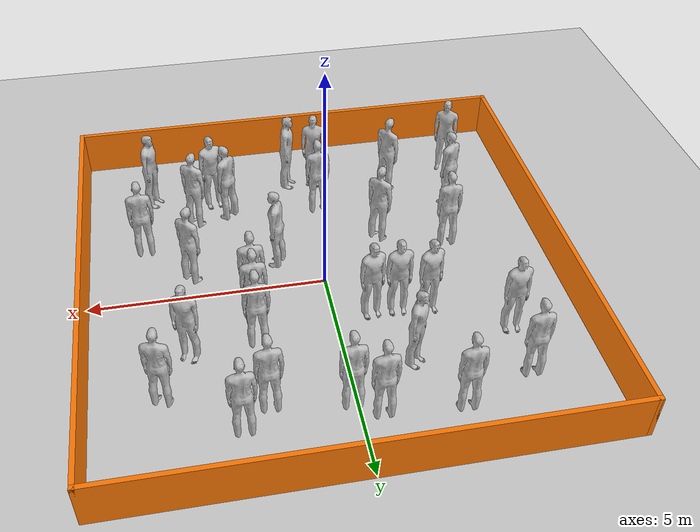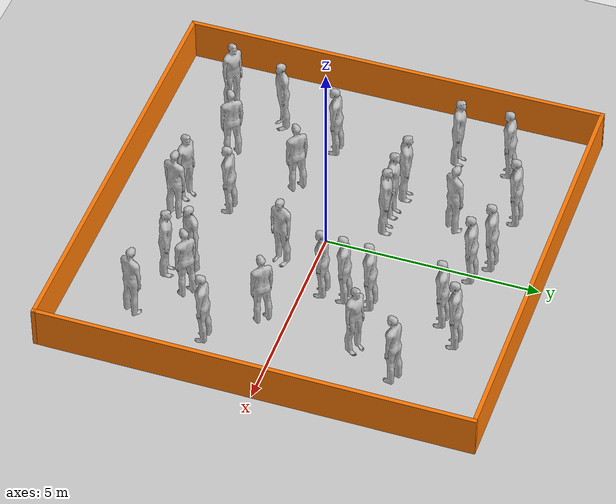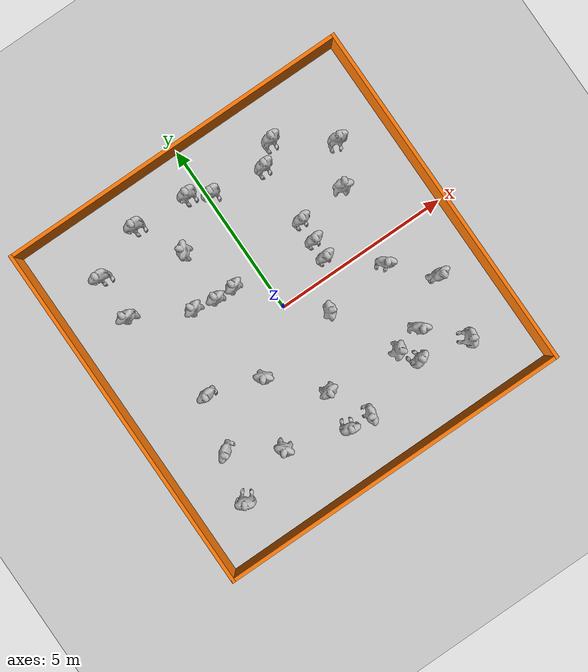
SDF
<sdf version="1.6">
 <world name="default">
  <light name="sun" type="directional">
   <cast_shadows>0</cast_shadows>
   <pose>0 0 10 0 -0 0</pose>
   <diffuse>0.8 0.8 0.8 1</diffuse>
   <specular>0.2 0.2 0.2 1</specular>
   <attenuation>
    <range>1000</range>
    <constant>0.9</constant>
    <linear>0.01</linear>
    <quadratic>0.001</quadratic>
   </attenuation>
   <direction>-0.5 0.1 -0.9</direction>
  </light>
  <model name="ground_plane">
   <static>1</static>
   <link name="link">
    <collision name="collision">
     <geometry><plane><normal>0 0 1</normal><size>100 100</size></plane></geometry>
     <surface><friction><ode><mu>100</mu><mu2>50</mu2></ode></friction></surface>
    </collision>
    <visual name="visual">
     <cast_shadows>0</cast_shadows>
     <geometry><plane><normal>0 0 1</normal><size>100 100</size></plane></geometry>
     <material>
      <script><uri>file://media/materials/scripts/gazebo.material</uri><name>Gazebo/Grey</name></script>
     </material>
    </visual>
   </link>
  </model>
  <gravity>0 0 -9.8</gravity>
  <magnetic_field>6e-06 2.3e-05 -4.2e-05</magnetic_field>
  <atmosphere type="adiabatic"/>
  <physics name="default_physics" default="0" type="ode">
   <max_step_size>0.001</max_step_size>
   <real_time_factor>1</real_time_factor>
   <real_time_update_rate>1000</real_time_update_rate>
  </physics>
  <scene><ambient>0.4 0.4 0.4 1</ambient><background>0.7 0.7 0.7 1</background><shadows>1</shadows></scene>
  <audio><device>default</device></audio>
  <spherical_coordinates>
   <surface_model>EARTH_WGS84</surface_model>
   <latitude_deg>0</latitude_deg>
   <longitude_deg>0</longitude_deg>
   <elevation>0</elevation>
   <heading_deg>0</heading_deg>
  </spherical_coordinates>
  <model name="world3">
   <link name="Wall_0">
    <collision name="Wall_0_Collision">
     <geometry><box><size>10.1 0.1 1</size></box></geometry>
     <pose>0 0 0.5 0 -0 0</pose>
    </collision>
    <visual name="Wall_0_Visual">
     <pose>0 0 0.5 0 -0 0</pose>
     <geometry><box><size>10.1 0.1 1</size></box></geometry>
     <material>
      <script><uri>file://media/materials/scripts/gazebo.material</uri><name>Gazebo/Grey</name></script>
      <ambient>0.996078 0.47451 0.0196078 1</ambient>
     </material>
     <meta><layer>0</layer></meta>
    </visual>
    <pose>0 5 0 0 -0 0</pose>
   </link>
   <link name="Wall_1">
    <collision name="Wall_1_Collision">
     <geometry><box><size>10.1 0.1 1</size></box></geometry>
     <pose>0 0 0.5 0 -0 0</pose>
    </collision>
    <visual name="Wall_1_Visual">
     <pose>0 0 0.5 0 -0 0</pose>
     <geometry><box><size>10.1 0.1 1</size></box></geometry>
     <material>
      <script><uri>file://media/materials/scripts/gazebo.material</uri><name>Gazebo/Grey</name></script>
      <ambient>0.996078 0.47451 0.0196078 1</ambient>
     </material>
     <meta><layer>0</layer></meta>
    </visual>
    <pose>5 0 0 0 -0 -1.5708</pose>
   </link>
   <link name="Wall_2">
    <collision name="Wall_2_Collision">
     <geometry><box><size>10.1 0.1 1</size></box></geometry>
     <pose>0 0 0.5 0 -0 0</pose>
    </collision>
    <visual name="Wall_2_Visual">
     <pose>0 0 0.5 0 -0 0</pose>
     <geometry><box><size>10.1 0.1 1</size></box></geometry>
     <material>
      <script><uri>file://media/materials/scripts/gazebo.material</uri><name>Gazebo/Grey</name></script>
      <ambient>0.996078 0.47451 0.0196078 1</ambient>
     </material>
     <meta><layer>0</layer></meta>
    </visual>
    <pose>0 -5 0 0 -0 3.14159</pose>
   </link>
   <link name="Wall_3">
    <collision name="Wall_3_Collision">
     <geometry><box><size>10.1 0.1 1</size></box></geometry>
     <pose>0 0 0.5 0 -0 0</pose>
    </collision>
    <visual name="Wall_3_Visual">
     <pose>0 0 0.5 0 -0 0</pose>
     <geometry><box><size>10.1 0.1 1</size></box></geometry>
     <material>
      <script><uri>file://media/materials/scripts/gazebo.material</uri><name>Gazebo/Grey</name></script>
      <ambient>0.996078 0.47451 0.0196078 1</ambient>
     </material>
     <meta><layer>0</layer></meta>
    </visual>
    <pose>-5 0 0 0 -0 1.5708</pose>
   </link>
   <static>1</static>
  </model>
  <model name="person_standing_0">
   <link name="link">
    <inertial>
     <pose>0 -0.1 0.95 0 -0 0</pose>
     <mass>80</mass>
     <inertia><ixx>24.88</ixx><ixy>0</ixy><ixz>0</ixz><iyy>25.73</iyy><iyz>0</iyz><izz>2.48</izz></inertia>
    </inertial>
    <collision name="bottom">
     <pose>0 -0.1 0.01 0 -0 0</pose>
     <geometry><box><size>0.5 0.35 0.02</size></box></geometry>
    </collision>
    <collision name="person">
     <pose>0 0 0.02 0.04 -0 0</pose>
     <geometry><mesh><uri>model://person_standing/meshes/standing.dae</uri></mesh></geometry>
    </collision>
    <visual name="visual">
     <pose>0 0 0.02 0.04 -0 0</pose>
     <geometry><mesh><uri>model://person_standing/meshes/standing.dae</uri></mesh></geometry>
    </visual>
   </link>
   <pose>0.835283 -0.712425 0 -1e-06 1e-06 1.11201</pose>
  </model>
  <model name="person_standing_1">
   <link name="link">
    <inertial>
     <pose>0 -0.1 0.95 0 -0 0</pose>
     <mass>80</mass>
     <inertia><ixx>24.88</ixx><ixy>0</ixy><ixz>0</ixz><iyy>25.73</iyy><iyz>0</iyz><izz>2.48</izz></inertia>
    </inertial>
    <collision name="bottom">
     <pose>0 -0.1 0.01 0 -0 0</pose>
     <geometry><box><size>0.5 0.35 0.02</size></box></geometry>
    </collision>
    <collision name="person">
     <pose>0 0 0.02 0.04 -0 0</pose>
     <geometry><mesh><uri>model://person_standing/meshes/standing.dae</uri></mesh></geometry>
    </collision>
    <visual name="visual">
     <pose>0 0 0.02 0.04 -0 0</pose>
     <geometry><mesh><uri>model://person_standing/meshes/standing.dae</uri></mesh></geometry>
    </visual>
   </link>
   <pose>-0.274695 -2.32325 -1e-06 -1e-06 -1e-06 -0.000905</pose>
  </model>
  <model name="person_standing_2">
   <link name="link">
    <inertial>
     <pose>0 -0.1 0.95 0 -0 0</pose>
     <mass>80</mass>
     <inertia><ixx>24.88</ixx><ixy>0</ixy><ixz>0</ixz><iyy>25.73</iyy><iyz>0</iyz><izz>2.48</izz></inertia>
    </inertial>
    <collision name="bottom">
     <pose>0 -0.1 0.01 0 -0 0</pose>
     <geometry><box><size>0.5 0.35 0.02</size></box></geometry>
    </collision>
    <collision name="person">
     <pose>0 0 0.02 0.04 -0 0</pose>
     <geometry><mesh><uri>model://person_standing/meshes/standing.dae</uri></mesh></geometry>
    </collision>
    <visual name="visual">
     <pose>0 0 0.02 0.04 -0 0</pose>
     <geometry><mesh><uri>model://person_standing/meshes/standing.dae</uri></mesh></geometry>
    </visual>
   </link>
   <pose>-1.96221 -2.92206 -1e-06 -1e-06 -1e-06 -0.92659</pose>
  </model>
  <model name="person_standing_3">
   <link name="link">
    <inertial>
     <pose>0 -0.1 0.95 0 -0 0</pose>
     <mass>80</mass>
     <inertia><ixx>24.88</ixx><ixy>0</ixy><ixz>0</ixz><iyy>25.73</iyy><iyz>0</iyz><izz>2.48</izz></inertia>
    </inertial>
    <collision name="bottom">
     <pose>0 -0.1 0.01 0 -0 0</pose>
     <geometry><box><size>0.5 0.35 0.02</size></box></geometry>
    </collision>
    <collision name="person">
     <pose>0 0 0.02 0.04 -0 0</pose>
     <geometry><mesh><uri>model://person_standing/meshes/standing.dae</uri></mesh></geometry>
    </collision>
    <visual name="visual">
     <pose>0 0 0.02 0.04 -0 0</pose>
     <geometry><mesh><uri>model://person_standing/meshes/standing.dae</uri></mesh></geometry>
    </visual>
   </link>
   <pose>-3.64275 -3.58488 -0 0 -1e-06 2.53021</pose>
  </model>
  <model name="person_standing_4">
   <link name="link">
    <inertial>
     <pose>0 -0.1 0.95 0 -0 0</pose>
     <mass>80</mass>
     <inertia><ixx>24.88</ixx><ixy>0</ixy><ixz>0</ixz><iyy>25.73</iyy><iyz>0</iyz><izz>2.48</izz></inertia>
    </inertial>
    <collision name="bottom">
     <pose>0 -0.1 0.01 0 -0 0</pose>
     <geometry><box><size>0.5 0.35 0.02</size></box></geometry>
    </collision>
    <collision name="person">
     <pose>0 0 0.02 0.04 -0 0</pose>
     <geometry><mesh><uri>model://person_standing/meshes/standing.dae</uri></mesh></geometry>
    </collision>
    <visual name="visual">
     <pose>0 0 0.02 0.04 -0 0</pose>
     <geometry><mesh><uri>model://person_standing/meshes/standing.dae</uri></mesh></geometry>
    </visual>
   </link>
   <pose>-3.34493 -2.11257 -0 -1e-06 -1e-06 0.559852</pose>
  </model>
  <model name="person_standing_5">
   <link name="link">
    <inertial>
     <pose>0 -0.1 0.95 0 -0 0</pose>
     <mass>80</mass>
     <inertia><ixx>24.88</ixx><ixy>0</ixy><ixz>0</ixz><iyy>25.73</iyy><iyz>0</iyz><izz>2.48</izz></inertia>
    </inertial>
    <collision name="bottom">
     <pose>0 -0.1 0.01 0 -0 0</pose>
     <geometry><box><size>0.5 0.35 0.02</size></box></geometry>
    </collision>
    <collision name="person">
     <pose>0 0 0.02 0.04 -0 0</pose>
     <geometry><mesh><uri>model://person_standing/meshes/standing.dae</uri></mesh></geometry>
    </collision>
    <visual name="visual">
     <pose>0 0 0.02 0.04 -0 0</pose>
     <geometry><mesh><uri>model://person_standing/meshes/standing.dae</uri></mesh></geometry>
    </visual>
   </link>
   <pose>-2.87358 -0.649181 0 -1e-06 1e-06 -0.002119</pose>
  </model>
  <model name="person_standing_6">
   <link name="link">
    <inertial>
     <pose>0 -0.1 0.95 0 -0 0</pose>
     <mass>80</mass>
     <inertia><ixx>24.88</ixx><ixy>0</ixy><ixz>0</ixz><iyy>25.73</iyy><iyz>0</iyz><izz>2.48</izz></inertia>
    </inertial>
    <collision name="bottom">
     <pose>0 -0.1 0.01 0 -0 0</pose>
     <geometry><box><size>0.5 0.35 0.02</size></box></geometry>
    </collision>
    <collision name="person">
     <pose>0 0 0.02 0.04 -0 0</pose>
     <geometry><mesh><uri>model://person_standing/meshes/standing.dae</uri></mesh></geometry>
    </collision>
    <visual name="visual">
     <pose>0 0 0.02 0.04 -0 0</pose>
     <geometry><mesh><uri>model://person_standing/meshes/standing.dae</uri></mesh></geometry>
    </visual>
   </link>
   <pose>-0.391308 -3.54975 -0 1e-06 1e-06 2.77669</pose>
  </model>
  <model name="person_standing_7">
   <link name="link">
    <inertial>
     <pose>0 -0.1 0.95 0 -0 0</pose>
     <mass>80</mass>
     <inertia><ixx>24.88</ixx><ixy>0</ixy><ixz>0</ixz><iyy>25.73</iyy><iyz>0</iyz><izz>2.48</izz></inertia>
    </inertial>
    <collision name="bottom">
     <pose>0 -0.1 0.01 0 -0 0</pose>
     <geometry><box><size>0.5 0.35 0.02</size></box></geometry>
    </collision>
    <collision name="person">
     <pose>0 0 0.02 0.04 -0 0</pose>
     <geometry><mesh><uri>model://person_standing/meshes/standing.dae</uri></mesh></geometry>
    </collision>
    <visual name="visual">
     <pose>0 0 0.02 0.04 -0 0</pose>
     <geometry><mesh><uri>model://person_standing/meshes/standing.dae</uri></mesh></geometry>
    </visual>
   </link>
   <pose>0.346695 -3.52629 0 0 -1e-06 -1.93154</pose>
  </model>
  <model name="person_standing_8">
   <link name="link">
    <inertial>
     <pose>0 -0.1 0.95 0 -0 0</pose>
     <mass>80</mass>
     <inertia><ixx>24.88</ixx><ixy>0</ixy><ixz>0</ixz><iyy>25.73</iyy><iyz>0</iyz><izz>2.48</izz></inertia>
    </inertial>
    <collision name="bottom">
     <pose>0 -0.1 0.01 0 -0 0</pose>
     <geometry><box><size>0.5 0.35 0.02</size></box></geometry>
    </collision>
    <collision name="person">
     <pose>0 0 0.02 0.04 -0 0</pose>
     <geometry><mesh><uri>model://person_standing/meshes/standing.dae</uri></mesh></geometry>
    </collision>
    <visual name="visual">
     <pose>0 0 0.02 0.04 -0 0</pose>
     <geometry><mesh><uri>model://person_standing/meshes/standing.dae</uri></mesh></geometry>
    </visual>
   </link>
   <pose>1.71755 -2.49945 0 0 -1e-06 0.729804</pose>
  </model>
  <model name="person_standing_9">
   <link name="link">
    <inertial>
     <pose>0 -0.1 0.95 0 -0 0</pose>
     <mass>80</mass>
     <inertia><ixx>24.88</ixx><ixy>0</ixy><ixz>0</ixz><iyy>25.73</iyy><iyz>0</iyz><izz>2.48</izz></inertia>
    </inertial>
    <collision name="bottom">
     <pose>0 -0.1 0.01 0 -0 0</pose>
     <geometry><box><size>0.5 0.35 0.02</size></box></geometry>
    </collision>
    <collision name="person">
     <pose>0 0 0.02 0.04 -0 0</pose>
     <geometry><mesh><uri>model://person_standing/meshes/standing.dae</uri></mesh></geometry>
    </collision>
    <visual name="visual">
     <pose>0 0 0.02 0.04 -0 0</pose>
     <geometry><mesh><uri>model://person_standing/meshes/standing.dae</uri></mesh></geometry>
    </visual>
   </link>
   <pose>2.0988 -3.1227 -0 -0 1e-06 -2.89478</pose>
  </model>
  <model name="person_standing_10">
   <link name="link">
    <inertial>
     <pose>0 -0.1 0.95 0 -0 0</pose>
     <mass>80</mass>
     <inertia><ixx>24.88</ixx><ixy>0</ixy><ixz>0</ixz><iyy>25.73</iyy><iyz>0</iyz><izz>2.48</izz></inertia>
    </inertial>
    <collision name="bottom">
     <pose>0 -0.1 0.01 0 -0 0</pose>
     <geometry><box><size>0.5 0.35 0.02</size></box></geometry>
    </collision>
    <collision name="person">
     <pose>0 0 0.02 0.04 -0 0</pose>
     <geometry><mesh><uri>model://person_standing/meshes/standing.dae</uri></mesh></geometry>
    </collision>
    <visual name="visual">
     <pose>0 0 0.02 0.04 -0 0</pose>
     <geometry><mesh><uri>model://person_standing/meshes/standing.dae</uri></mesh></geometry>
    </visual>
   </link>
   <pose>2.58092 -2.3386 0 0 1e-06 -0.663556</pose>
  </model>
  <model name="person_standing_11">
   <link name="link">
    <inertial>
     <pose>0 -0.1 0.95 0 -0 0</pose>
     <mass>80</mass>
     <inertia><ixx>24.88</ixx><ixy>0</ixy><ixz>0</ixz><iyy>25.73</iyy><iyz>0</iyz><izz>2.48</izz></inertia>
    </inertial>
    <collision name="bottom">
     <pose>0 -0.1 0.01 0 -0 0</pose>
     <geometry><box><size>0.5 0.35 0.02</size></box></geometry>
    </collision>
    <collision name="person">
     <pose>0 0 0.02 0.04 -0 0</pose>
     <geometry><mesh><uri>model://person_standing/meshes/standing.dae</uri></mesh></geometry>
    </collision>
    <visual name="visual">
     <pose>0 0 0.02 0.04 -0 0</pose>
     <geometry><mesh><uri>model://person_standing/meshes/standing.dae</uri></mesh></geometry>
    </visual>
   </link>
   <pose>3.51625 -3.36978 -0 -0 1e-06 -2.0803</pose>
  </model>
  <model name="person_standing_12">
   <link name="link">
    <inertial>
     <pose>0 -0.1 0.95 0 -0 0</pose>
     <mass>80</mass>
     <inertia><ixx>24.88</ixx><ixy>0</ixy><ixz>0</ixz><iyy>25.73</iyy><iyz>0</iyz><izz>2.48</izz></inertia>
    </inertial>
    <collision name="bottom">
     <pose>0 -0.1 0.01 0 -0 0</pose>
     <geometry><box><size>0.5 0.35 0.02</size></box></geometry>
    </collision>
    <collision name="person">
     <pose>0 0 0.02 0.04 -0 0</pose>
     <geometry><mesh><uri>model://person_standing/meshes/standing.dae</uri></mesh></geometry>
    </collision>
    <visual name="visual">
     <pose>0 0 0.02 0.04 -0 0</pose>
     <geometry><mesh><uri>model://person_standing/meshes/standing.dae</uri></mesh></geometry>
    </visual>
   </link>
   <pose>3.70742 -1.48758 -0 1e-06 -1e-06 -2.2e-05</pose>
  </model>
  <model name="person_standing_13">
   <link name="link">
    <inertial>
     <pose>0 -0.1 0.95 0 -0 0</pose>
     <mass>80</mass>
     <inertia><ixx>24.88</ixx><ixy>0</ixy><ixz>0</ixz><iyy>25.73</iyy><iyz>0</iyz><izz>2.48</izz></inertia>
    </inertial>
    <collision name="bottom">
     <pose>0 -0.1 0.01 0 -0 0</pose>
     <geometry><box><size>0.5 0.35 0.02</size></box></geometry>
    </collision>
    <collision name="person">
     <pose>0 0 0.02 0.04 -0 0</pose>
     <geometry><mesh><uri>model://person_standing/meshes/standing.dae</uri></mesh></geometry>
    </collision>
    <visual name="visual">
     <pose>0 0 0.02 0.04 -0 0</pose>
     <geometry><mesh><uri>model://person_standing/meshes/standing.dae</uri></mesh></geometry>
    </visual>
   </link>
   <pose>2.82342 -0.486954 0 -0 1e-06 -0.801401</pose>
  </model>
  <model name="person_standing_14">
   <link name="link">
    <inertial>
     <pose>0 -0.1 0.95 0 -0 0</pose>
     <mass>80</mass>
     <inertia><ixx>24.88</ixx><ixy>0</ixy><ixz>0</ixz><iyy>25.73</iyy><iyz>0</iyz><izz>2.48</izz></inertia>
    </inertial>
    <collision name="bottom">
     <pose>0 -0.1 0.01 0 -0 0</pose>
     <geometry><box><size>0.5 0.35 0.02</size></box></geometry>
    </collision>
    <collision name="person">
     <pose>0 0 0.02 0.04 -0 0</pose>
     <geometry><mesh><uri>model://person_standing/meshes/standing.dae</uri></mesh></geometry>
    </collision>
    <visual name="visual">
     <pose>0 0 0.02 0.04 -0 0</pose>
     <geometry><mesh><uri>model://person_standing/meshes/standing.dae</uri></mesh></geometry>
    </visual>
   </link>
   <pose>1.5815 0.527804 -0 1e-06 1e-06 -0.001422</pose>
  </model>
  <model name="person_standing_15">
   <link name="link">
    <inertial>
     <pose>0 -0.1 0.95 0 -0 0</pose>
     <mass>80</mass>
     <inertia><ixx>24.88</ixx><ixy>0</ixy><ixz>0</ixz><iyy>25.73</iyy><iyz>0</iyz><izz>2.48</izz></inertia>
    </inertial>
    <collision name="bottom">
     <pose>0 -0.1 0.01 0 -0 0</pose>
     <geometry><box><size>0.5 0.35 0.02</size></box></geometry>
    </collision>
    <collision name="person">
     <pose>0 0 0.02 0.04 -0 0</pose>
     <geometry><mesh><uri>model://person_standing/meshes/standing.dae</uri></mesh></geometry>
    </collision>
    <visual name="visual">
     <pose>0 0 0.02 0.04 -0 0</pose>
     <geometry><mesh><uri>model://person_standing/meshes/standing.dae</uri></mesh></geometry>
    </visual>
   </link>
   <pose>1.59626 1.04689 -0 2e-06 -1e-06 -0.001468</pose>
  </model>
  <model name="person_standing_16">
   <link name="link">
    <inertial>
     <pose>0 -0.1 0.95 0 -0 0</pose>
     <mass>80</mass>
     <inertia><ixx>24.88</ixx><ixy>0</ixy><ixz>0</ixz><iyy>25.73</iyy><iyz>0</iyz><izz>2.48</izz></inertia>
    </inertial>
    <collision name="bottom">
     <pose>0 -0.1 0.01 0 -0 0</pose>
     <geometry><box><size>0.5 0.35 0.02</size></box></geometry>
    </collision>
    <collision name="person">
     <pose>0 0 0.02 0.04 -0 0</pose>
     <geometry><mesh><uri>model://person_standing/meshes/standing.dae</uri></mesh></geometry>
    </collision>
    <visual name="visual">
     <pose>0 0 0.02 0.04 -0 0</pose>
     <geometry><mesh><uri>model://person_standing/meshes/standing.dae</uri></mesh></geometry>
    </visual>
   </link>
   <pose>1.62218 1.65208 0 1e-06 1e-06 -0.00017</pose>
  </model>
  <model name="person_standing_17">
   <link name="link">
    <inertial>
     <pose>0 -0.1 0.95 0 -0 0</pose>
     <mass>80</mass>
     <inertia><ixx>24.88</ixx><ixy>0</ixy><ixz>0</ixz><iyy>25.73</iyy><iyz>0</iyz><izz>2.48</izz></inertia>
    </inertial>
    <collision name="bottom">
     <pose>0 -0.1 0.01 0 -0 0</pose>
     <geometry><box><size>0.5 0.35 0.02</size></box></geometry>
    </collision>
    <collision name="person">
     <pose>0 0 0.02 0.04 -0 0</pose>
     <geometry><mesh><uri>model://person_standing/meshes/standing.dae</uri></mesh></geometry>
    </collision>
    <visual name="visual">
     <pose>0 0 0.02 0.04 -0 0</pose>
     <geometry><mesh><uri>model://person_standing/meshes/standing.dae</uri></mesh></geometry>
    </visual>
   </link>
   <pose>-0.737203 1.07209 -0 -1e-06 1e-06 -2.9663</pose>
  </model>
  <model name="person_standing_18">
   <link name="link">
    <inertial>
     <pose>0 -0.1 0.95 0 -0 0</pose>
     <mass>80</mass>
     <inertia><ixx>24.88</ixx><ixy>0</ixy><ixz>0</ixz><iyy>25.73</iyy><iyz>0</iyz><izz>2.48</izz></inertia>
    </inertial>
    <collision name="bottom">
     <pose>0 -0.1 0.01 0 -0 0</pose>
     <geometry><box><size>0.5 0.35 0.02</size></box></geometry>
    </collision>
    <collision name="person">
     <pose>0 0 0.02 0.04 -0 0</pose>
     <geometry><mesh><uri>model://person_standing/meshes/standing.dae</uri></mesh></geometry>
    </collision>
    <visual name="visual">
     <pose>0 0 0.02 0.04 -0 0</pose>
     <geometry><mesh><uri>model://person_standing/meshes/standing.dae</uri></mesh></geometry>
    </visual>
   </link>
   <pose>-1.29669 1.0734 -0 0 -1e-06 3.11295</pose>
  </model>
  <model name="person_standing_19">
   <link name="link">
    <inertial>
     <pose>0 -0.1 0.95 0 -0 0</pose>
     <mass>80</mass>
     <inertia><ixx>24.88</ixx><ixy>0</ixy><ixz>0</ixz><iyy>25.73</iyy><iyz>0</iyz><izz>2.48</izz></inertia>
    </inertial>
    <collision name="bottom">
     <pose>0 -0.1 0.01 0 -0 0</pose>
     <geometry><box><size>0.5 0.35 0.02</size></box></geometry>
    </collision>
    <collision name="person">
     <pose>0 0 0.02 0.04 -0 0</pose>
     <geometry><mesh><uri>model://person_standing/meshes/standing.dae</uri></mesh></geometry>
    </collision>
    <visual name="visual">
     <pose>0 0 0.02 0.04 -0 0</pose>
     <geometry><mesh><uri>model://person_standing/meshes/standing.dae</uri></mesh></geometry>
    </visual>
   </link>
   <pose>-1.89579 1.17643 0 -2e-06 1e-06 -2.91418</pose>
  </model>
  <model name="person_standing_20">
   <link name="link">
    <inertial>
     <pose>0 -0.1 0.95 0 -0 0</pose>
     <mass>80</mass>
     <inertia><ixx>24.88</ixx><ixy>0</ixy><ixz>0</ixz><iyy>25.73</iyy><iyz>0</iyz><izz>2.48</izz></inertia>
    </inertial>
    <collision name="bottom">
     <pose>0 -0.1 0.01 0 -0 0</pose>
     <geometry><box><size>0.5 0.35 0.02</size></box></geometry>
    </collision>
    <collision name="person">
     <pose>0 0 0.02 0.04 -0 0</pose>
     <geometry><mesh><uri>model://person_standing/meshes/standing.dae</uri></mesh></geometry>
    </collision>
    <visual name="visual">
     <pose>0 0 0.02 0.04 -0 0</pose>
     <geometry><mesh><uri>model://person_standing/meshes/standing.dae</uri></mesh></geometry>
    </visual>
   </link>
   <pose>-1.22932 2.55149 -0 -1e-06 1e-06 -2.29344</pose>
  </model>
  <model name="person_standing_21">
   <link name="link">
    <inertial>
     <pose>0 -0.1 0.95 0 -0 0</pose>
     <mass>80</mass>
     <inertia><ixx>24.88</ixx><ixy>0</ixy><ixz>0</ixz><iyy>25.73</iyy><iyz>0</iyz><izz>2.48</izz></inertia>
    </inertial>
    <collision name="bottom">
     <pose>0 -0.1 0.01 0 -0 0</pose>
     <geometry><box><size>0.5 0.35 0.02</size></box></geometry>
    </collision>
    <collision name="person">
     <pose>0 0 0.02 0.04 -0 0</pose>
     <geometry><mesh><uri>model://person_standing/meshes/standing.dae</uri></mesh></geometry>
    </collision>
    <visual name="visual">
     <pose>0 0 0.02 0.04 -0 0</pose>
     <geometry><mesh><uri>model://person_standing/meshes/standing.dae</uri></mesh></geometry>
    </visual>
   </link>
   <pose>-3.42085 3.34878 -0 1e-06 -1e-06 0.00122</pose>
  </model>
  <model name="person_standing_22">
   <link name="link">
    <inertial>
     <pose>0 -0.1 0.95 0 -0 0</pose>
     <mass>80</mass>
     <inertia><ixx>24.88</ixx><ixy>0</ixy><ixz>0</ixz><iyy>25.73</iyy><iyz>0</iyz><izz>2.48</izz></inertia>
    </inertial>
    <collision name="bottom">
     <pose>0 -0.1 0.01 0 -0 0</pose>
     <geometry><box><size>0.5 0.35 0.02</size></box></geometry>
    </collision>
    <collision name="person">
     <pose>0 0 0.02 0.04 -0 0</pose>
     <geometry><mesh><uri>model://person_standing/meshes/standing.dae</uri></mesh></geometry>
    </collision>
    <visual name="visual">
     <pose>0 0 0.02 0.04 -0 0</pose>
     <geometry><mesh><uri>model://person_standing/meshes/standing.dae</uri></mesh></geometry>
    </visual>
   </link>
   <pose>-1.95924 3.93027 -0 1e-06 1e-06 -0.000282</pose>
  </model>
  <model name="person_standing_23">
   <link name="link">
    <inertial>
     <pose>0 -0.1 0.95 0 -0 0</pose>
     <mass>80</mass>
     <inertia><ixx>24.88</ixx><ixy>0</ixy><ixz>0</ixz><iyy>25.73</iyy><iyz>0</iyz><izz>2.48</izz></inertia>
    </inertial>
    <collision name="bottom">
     <pose>0 -0.1 0.01 0 -0 0</pose>
     <geometry><box><size>0.5 0.35 0.02</size></box></geometry>
    </collision>
    <collision name="person">
     <pose>0 0 0.02 0.04 -0 0</pose>
     <geometry><mesh><uri>model://person_standing/meshes/standing.dae</uri></mesh></geometry>
    </collision>
    <visual name="visual">
     <pose>0 0 0.02 0.04 -0 0</pose>
     <geometry><mesh><uri>model://person_standing/meshes/standing.dae</uri></mesh></geometry>
    </visual>
   </link>
   <pose>-3.42207 1.96647 -0 1e-06 -1e-06 -3.12311</pose>
  </model>
  <model name="person_standing_24">
   <link name="link">
    <inertial>
     <pose>0 -0.1 0.95 0 -0 0</pose>
     <mass>80</mass>
     <inertia><ixx>24.88</ixx><ixy>0</ixy><ixz>0</ixz><iyy>25.73</iyy><iyz>0</iyz><izz>2.48</izz></inertia>
    </inertial>
    <collision name="bottom">
     <pose>0 -0.1 0.01 0 -0 0</pose>
     <geometry><box><size>0.5 0.35 0.02</size></box></geometry>
    </collision>
    <collision name="person">
     <pose>0 0 0.02 0.04 -0 0</pose>
     <geometry><mesh><uri>model://person_standing/meshes/standing.dae</uri></mesh></geometry>
    </collision>
    <visual name="visual">
     <pose>0 0 0.02 0.04 -0 0</pose>
     <geometry><mesh><uri>model://person_standing/meshes/standing.dae</uri></mesh></geometry>
    </visual>
   </link>
   <pose>-0.405381 3.82316 -0 0 -1e-06 0.000283</pose>
  </model>
  <model name="person_standing_25">
   <link name="link">
    <inertial>
     <pose>0 -0.1 0.95 0 -0 0</pose>
     <mass>80</mass>
     <inertia><ixx>24.88</ixx><ixy>0</ixy><ixz>0</ixz><iyy>25.73</iyy><iyz>0</iyz><izz>2.48</izz></inertia>
    </inertial>
    <collision name="bottom">
     <pose>0 -0.1 0.01 0 -0 0</pose>
     <geometry><box><size>0.5 0.35 0.02</size></box></geometry>
    </collision>
    <collision name="person">
     <pose>0 0 0.02 0.04 -0 0</pose>
     <geometry><mesh><uri>model://person_standing/meshes/standing.dae</uri></mesh></geometry>
    </collision>
    <visual name="visual">
     <pose>0 0 0.02 0.04 -0 0</pose>
     <geometry><mesh><uri>model://person_standing/meshes/standing.dae</uri></mesh></geometry>
    </visual>
   </link>
   <pose>0.110487 3.50531 -0 2e-06 1e-06 0.000804</pose>
  </model>
  <model name="person_standing_26">
   <link name="link">
    <inertial>
     <pose>0 -0.1 0.95 0 -0 0</pose>
     <mass>80</mass>
     <inertia><ixx>24.88</ixx><ixy>0</ixy><ixz>0</ixz><iyy>25.73</iyy><iyz>0</iyz><izz>2.48</izz></inertia>
    </inertial>
    <collision name="bottom">
     <pose>0 -0.1 0.01 0 -0 0</pose>
     <geometry><box><size>0.5 0.35 0.02</size></box></geometry>
    </collision>
    <collision name="person">
     <pose>0 0 0.02 0.04 -0 0</pose>
     <geometry><mesh><uri>model://person_standing/meshes/standing.dae</uri></mesh></geometry>
    </collision>
    <visual name="visual">
     <pose>0 0 0.02 0.04 -0 0</pose>
     <geometry><mesh><uri>model://person_standing/meshes/standing.dae</uri></mesh></geometry>
    </visual>
   </link>
   <pose>1.60795 3.31286 -0 1e-06 1e-06 -0.00024</pose>
  </model>
  <model name="person_standing_27">
   <link name="link">
    <inertial>
     <pose>0 -0.1 0.95 0 -0 0</pose>
     <mass>80</mass>
     <inertia><ixx>24.88</ixx><ixy>0</ixy><ixz>0</ixz><iyy>25.73</iyy><iyz>0</iyz><izz>2.48</izz></inertia>
    </inertial>
    <collision name="bottom">
     <pose>0 -0.1 0.01 0 -0 0</pose>
     <geometry><box><size>0.5 0.35 0.02</size></box></geometry>
    </collision>
    <collision name="person">
     <pose>0 0 0.02 0.04 -0 0</pose>
     <geometry><mesh><uri>model://person_standing/meshes/standing.dae</uri></mesh></geometry>
    </collision>
    <visual name="visual">
     <pose>0 0 0.02 0.04 -0 0</pose>
     <geometry><mesh><uri>model://person_standing/meshes/standing.dae</uri></mesh></geometry>
    </visual>
   </link>
   <pose>2.13818 3.77076 -0 1e-06 1e-06 -8.5e-05</pose>
  </model>
  <model name="person_standing_28">
   <link name="link">
    <inertial>
     <pose>0 -0.1 0.95 0 -0 0</pose>
     <mass>80</mass>
     <inertia><ixx>24.88</ixx><ixy>0</ixy><ixz>0</ixz><iyy>25.73</iyy><iyz>0</iyz><izz>2.48</izz></inertia>
    </inertial>
    <collision name="bottom">
     <pose>0 -0.1 0.01 0 -0 0</pose>
     <geometry><box><size>0.5 0.35 0.02</size></box></geometry>
    </collision>
    <collision name="person">
     <pose>0 0 0.02 0.04 -0 0</pose>
     <geometry><mesh><uri>model://person_standing/meshes/standing.dae</uri></mesh></geometry>
    </collision>
    <visual name="visual">
     <pose>0 0 0.02 0.04 -0 0</pose>
     <geometry><mesh><uri>model://person_standing/meshes/standing.dae</uri></mesh></geometry>
    </visual>
   </link>
   <pose>2.94538 1.59396 -0 -1e-06 -1e-06 2.66991</pose>
  </model>
  <model name="person_standing_29">
   <link name="link">
    <inertial>
     <pose>0 -0.1 0.95 0 -0 0</pose>
     <mass>80</mass>
     <inertia><ixx>24.88</ixx><ixy>0</ixy><ixz>0</ixz><iyy>25.73</iyy><iyz>0</iyz><izz>2.48</izz></inertia>
    </inertial>
    <collision name="bottom">
     <pose>0 -0.1 0.01 0 -0 0</pose>
     <geometry><box><size>0.5 0.35 0.02</size></box></geometry>
    </collision>
    <collision name="person">
     <pose>0 0 0.02 0.04 -0 0</pose>
     <geometry><mesh><uri>model://person_standing/meshes/standing.dae</uri></mesh></geometry>
    </collision>
    <visual name="visual">
     <pose>0 0 0.02 0.04 -0 0</pose>
     <geometry><mesh><uri>model://person_standing/meshes/standing.dae</uri></mesh></geometry>
    </visual>
   </link>
   <pose>3.57705 2.80594 -0 1e-06 -1e-06 -0.319648</pose>
  </model>
  <model name="person_standing">
   <link name="link">
    <inertial>
     <pose>0 -0.1 0.95 0 -0 0</pose>
     <mass>80</mass>
     <inertia><ixx>24.88</ixx><ixy>0</ixy><ixz>0</ixz><iyy>25.73</iyy><iyz>0</iyz><izz>2.48</izz></inertia>
    </inertial>
    <collision name="bottom">
     <pose>0 -0.1 0.01 0 -0 0</pose>
     <geometry><box><size>0.5 0.35 0.02</size></box></geometry>
    </collision>
    <collision name="person">
     <pose>0 0 0.02 0.04 -0 0</pose>
     <geometry><mesh><uri>model://person_standing/meshes/standing.dae</uri></mesh></geometry>
    </collision>
    <visual name="visual">
     <pose>0 0 0.02 0.04 -0 0</pose>
     <geometry><mesh><uri>model://person_standing/meshes/standing.dae</uri></mesh></geometry>
    </visual>
   </link>
   <pose>-1.374 -1.12963 -0 1e-06 -1e-06 -0.779152</pose>
  </model>
 </world>
</sdf>
